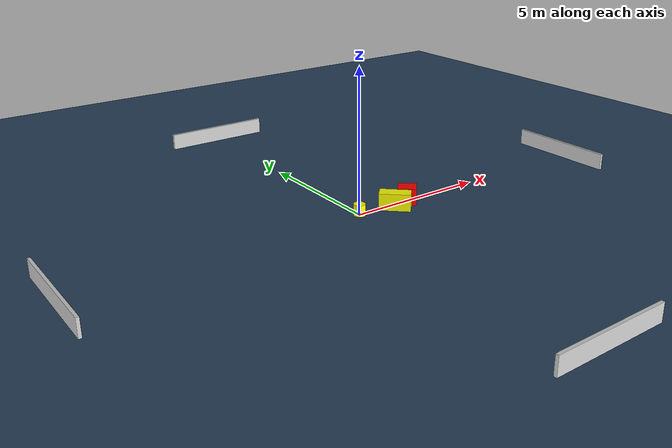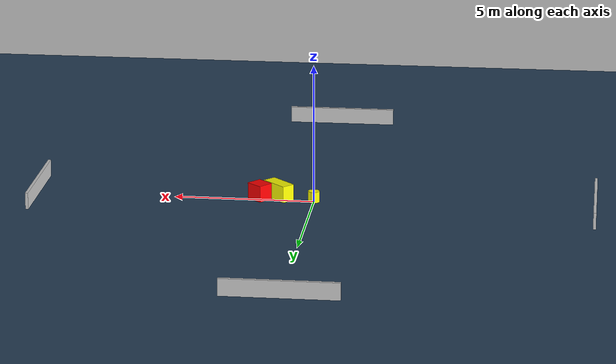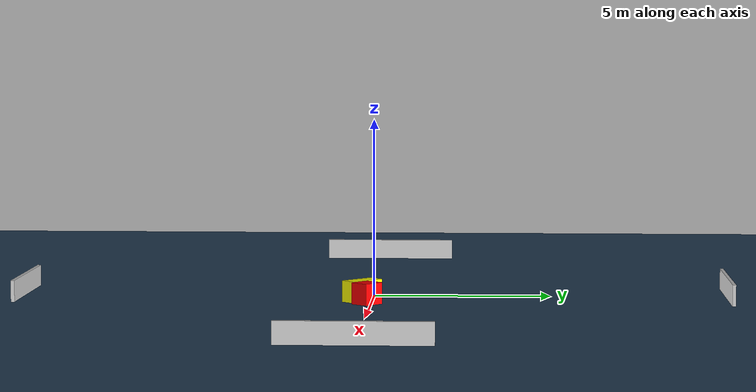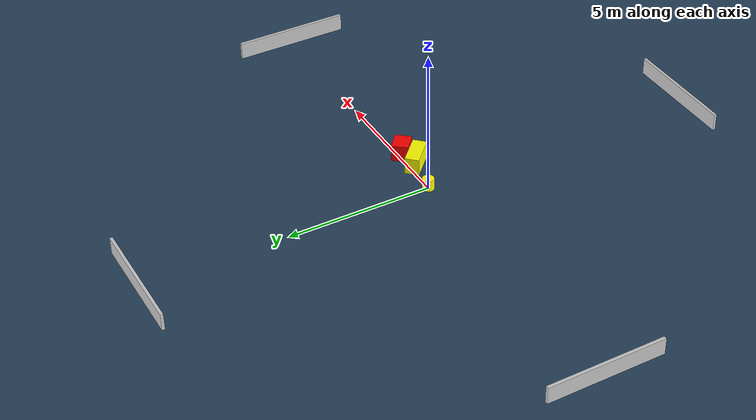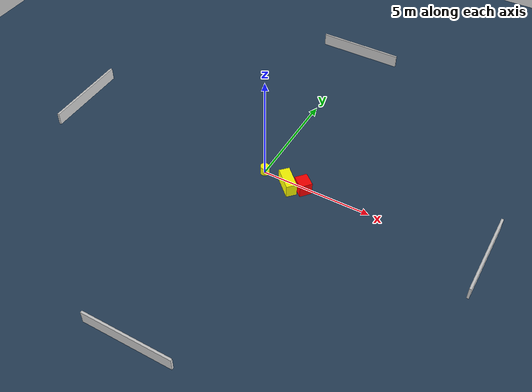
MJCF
<?xml version="1.0" ?>
<mujoco model="generated_environment">
  <option timestep="0.01" integrator="RK4" cone="elliptic"/>
  <default>
    <geom density="1"/>
  </default>
  <asset>
    <texture builtin="gradient" height="3072" name="skybox" rgb1="0.3 0.5 0.7" rgb2="0 0 0" type="skybox" width="512"/>
    <texture builtin="checker" height="300" name="groundplane" rgb1="0.2 0.3 0.4" rgb2="0.1 0.2 0.3" type="2d" width="300"/>
    <material name="groundplane" reflectance="0.2" texrepeat="5 5" texture="groundplane"/>
  </asset>
  <worldbody>
    <light dir="0 0 -1" directional="true" pos="0 0 1.5"/>
    <geom condim="3" friction="0.5 0.005 0.001" material="groundplane" name="floor" pos="0 0 0" size="0 0 0.05" type="plane"/>
    <body name="walls">
      <geom name="wall_1" condim="4" pos="-10.0 0.0 0.3" rgba="0.800000011920929 0.800000011920929 0.800000011920929 1.0" size="0.05 2.0 0.3" type="box"/>
      <geom name="wall_2" condim="4" pos="10.0 0.0 0.3" rgba="0.800000011920929 0.800000011920929 0.800000011920929 1.0" size="0.05 2.0 0.3" type="box"/>
      <geom name="wall_3" condim="4" pos="0.0 -10.0 0.3" rgba="0.800000011920929 0.800000011920929 0.800000011920929 1.0" size="2.0 0.05 0.3" type="box"/>
      <geom name="wall_4" condim="4" pos="0.0 10.0 0.3" rgba="0.800000011920929 0.800000011920929 0.800000011920929 1.0" size="2.0 0.05 0.3" type="box"/>
    </body>
    <body name="robot">
      <joint name="joint_x" type="slide" pos="0 0 0" axis="1 0 0"/>
      <joint name="joint_y" type="slide" pos="0 0 0" axis="0 1 0"/>
      <geom name="robot" type="cylinder" pos="0.0 0.0 0.2" size="0.2 0.2 0.0" mass="5.0" friction="1.0 0.005 0.0001" condim="4" rgba="1.0 1.0 0.0 1.0"/>
    </body>
    <body name="obstacle_1_movable">
      <geom name="obstacle_1_movable" condim="4" pos="1.2914460308465474 -0.27432911451115294 0.3" euler="0 0 226.11893244339262" friction="0.0 0.005 0.001" rgba="1.0 1.0 0.0 1.0" size="0.23979605817948235 0.5395869605247396 0.3" type="box" mass="0.1"/>
      <joint type="free"/>
    </body>
    <body name="obstacle_2_static">
      <geom name="obstacle_2_static" condim="4" pos="1.957071084824647 -0.10833135695761219 0.3" euler="0 0 319.63167500242173" friction="0.0 0.005 0.001" rgba="1.0 0.0 0.0 1.0" size="0.3217735556120028 0.2849061100859456 0.3" type="box"/>
    </body>
  </worldbody>
  <actuator>
    <motor name="actuator_x" joint="joint_x" gear="1" ctrlrange="-1 1"/>
    <motor name="actuator_y" joint="joint_y" gear="1" ctrlrange="-1 1"/>
  </actuator>
</mujoco>
